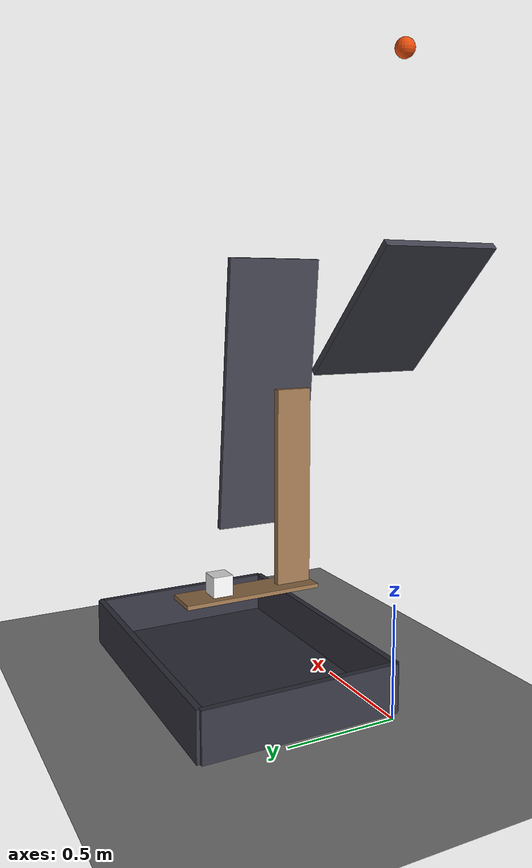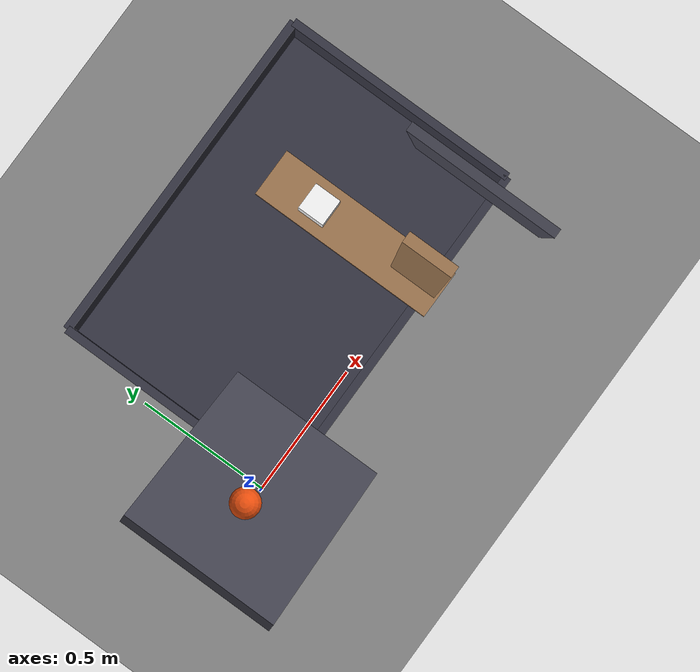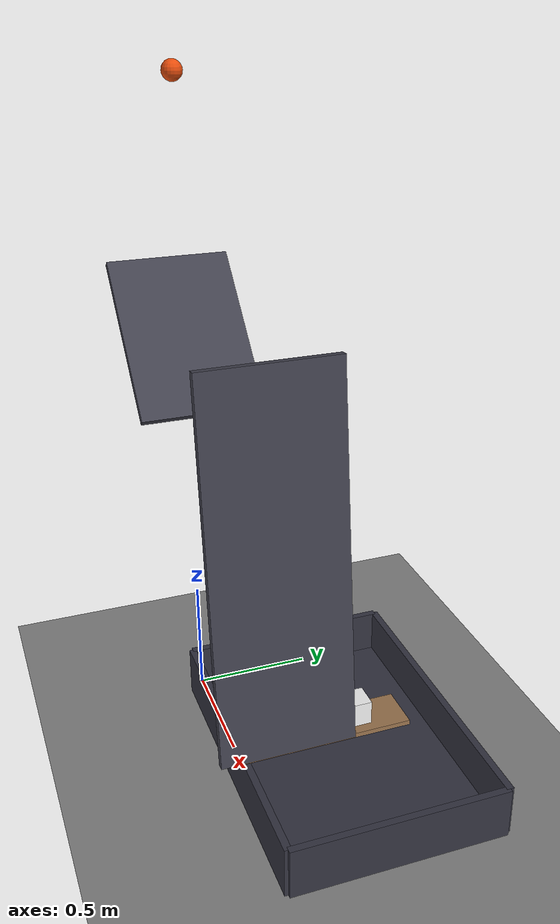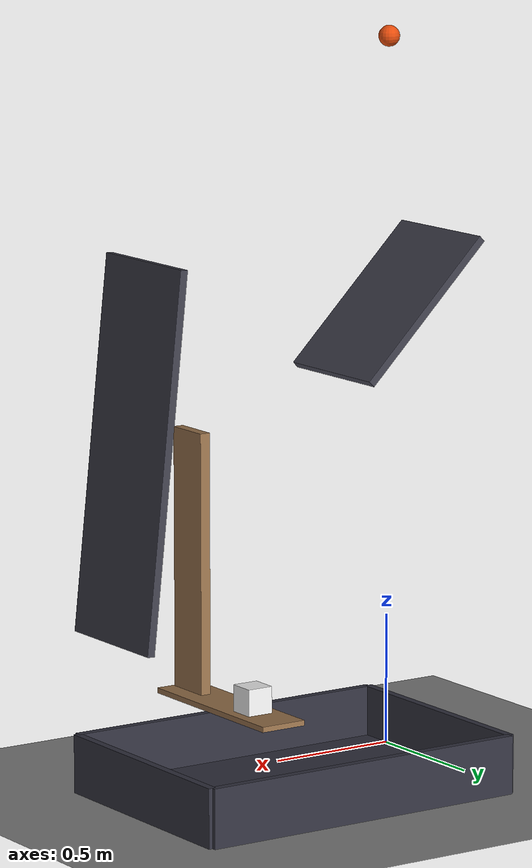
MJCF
<mujoco model="two_ricochets_and_a_hinged_release">
  <compiler angle="radian"/>
  <option timestep="0.002"/>
  <worldbody>
    <geom name="floor" type="plane" size="6 6 0.1" friction="0.8 0.005 0.002"/>
    <body name="wall1">
      <geom name="wall1" type="box" pos="0 0 1.7" size="0.353553 0.25 0.015" euler="0 0.785398 0" friction="0.02 0.001 0.001" solref="0.01 0.2" rgba="0.25 0.25 0.3 1"/>
    </body>
    <body name="wall2">
      <geom name="wall2" type="box" pos="1.145 0 1.25" size="0.704006 0.25 0.015" euler="0 1.46406 0" friction="0.02 0.001 0.001" solref="0.01 0.2" rgba="0.25 0.25 0.3 1"/>
    </body>
    <body name="ball" pos="0 0 2.7">
      <freejoint/>
      <geom name="ball" type="sphere" pos="0 0 0" size="0.04" mass="0.25" condim="6" friction="0.02 0.001 0.001" solref="0.01 0.2" rgba="0.9 0.3 0.05 1"/>
    </body>
    <body name="target" pos="0.88 0 0.32">
      <joint name="release_hinge" type="hinge" pos="0 0 0" axis="0 1 0" limited="true" range="-1.5708 0" stiffness="0.05" springref="0.0872665" damping="0.015"/>
      <geom name="target" type="box" pos="0 0 0.495" size="0.02 0.09 0.495" mass="0.08" friction="0.3 0.005 0.0001" solref="0.01 1" rgba="0.6 0.45 0.3 1"/>
      <geom name="release shelf" type="box" pos="0 0.25 -5.55112e-17" size="0.09 0.35 0.01" mass="0.03" friction="3 0.01 0.004" solref="0.01 1" rgba="0.6 0.45 0.3 1"/>
    </body>
    <body name="bin">
      <geom name="bin_base" type="box" pos="0.7 0.4 0.015" size="0.65 0.45 0.015" friction="1.2 0.02 0.01" solref="0.01 1" rgba="0.2 0.2 0.25 1"/>
      <geom name="bin_near_wall" type="box" pos="0.05 0.4 0.11" size="0.015 0.45 0.11" friction="1.2 0.02 0.01" solref="0.01 1" rgba="0.2 0.2 0.25 1"/>
      <geom name="bin_far_wall" type="box" pos="1.35 0.4 0.11" size="0.015 0.45 0.11" friction="1.2 0.02 0.01" solref="0.01 1" rgba="0.2 0.2 0.25 1"/>
      <geom name="bin_left_wall" type="box" pos="0.7 0.85 0.11" size="0.65 0.015 0.11" friction="1.2 0.02 0.01" solref="0.01 1" rgba="0.2 0.2 0.25 1"/>
      <geom name="bin_right_wall" type="box" pos="0.7 -0.05 0.11" size="0.65 0.015 0.11" friction="1.2 0.02 0.01" solref="0.01 1" rgba="0.2 0.2 0.25 1"/>
    </body>
    <body name="block" pos="0.88 0.4 0.38">
      <freejoint/>
      <geom name="block" type="box" pos="0 0 0" size="0.05 0.05 0.05" mass="0.12" friction="3 0.02 0.01" solref="0.01 1" rgba="0.95 0.95 0.95 1"/>
    </body>
  </worldbody>
  <keyframe>
    <key name="start" qpos="0 0 2.7 1 0 0 0 0 0.88 0.4 0.38 1 0 0 0" qvel="0 0 0 0 0 0 0 0 0 0 0 0 0"/>
  </keyframe>
</mujoco>
